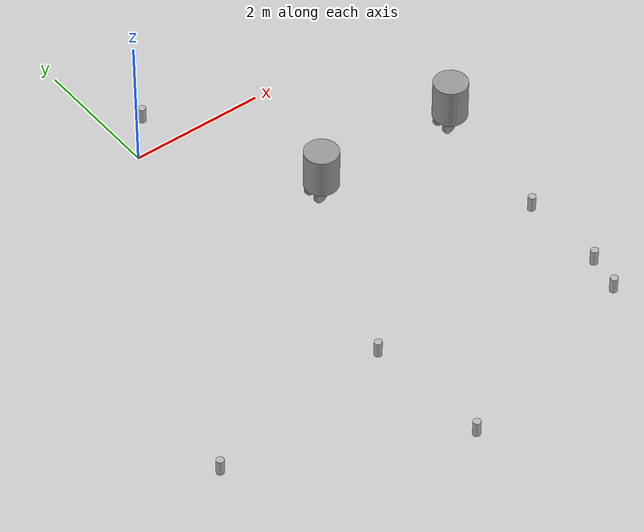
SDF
<sdf version="1.6">
 <world name="default">
  <model name="ground_plane">
   <static>1</static>
   <link name="link">
    <collision name="collision">
     <geometry><plane><normal>0 0 1</normal><size>100 100</size></plane></geometry>
     <surface><friction><ode><mu>100</mu><mu2>50</mu2></ode></friction></surface>
    </collision>
    <visual name="visual">
     <cast_shadows>0</cast_shadows>
     <geometry><plane><normal>0 0 1</normal><size>100 100</size></plane></geometry>
     <material>
      <script><uri>file://media/materials/scripts/gazebo.material</uri><name>Gazebo/Grey</name></script>
     </material>
    </visual>
   </link>
  </model>
  <model name="robot1">
   <link name="link_1">
    <pose>0.0125 -0 0.3 0 -0 0</pose>
    <inertial>
     <mass>1</mass>
     <inertia><ixx>0.145833</ixx><ixy>0</ixy><ixz>0</ixz><iyy>0.145833</iyy><iyz>0</iyz><izz>0.125</izz></inertia>
    </inertial>
    <visual name="visual">
     <geometry><cylinder><radius>0.25</radius><length>0.6</length></cylinder></geometry>
     <material>
      <lighting>1</lighting>
      <script><uri>file://media/materials/scripts/gazebo.material</uri><name>Gazebo/Grey</name></script>
      <shader type="pixel"><normal_map>__default__</normal_map></shader>
      <ambient>0.3 0.3 0.3 1</ambient>
      <diffuse>0.7 0.7 0.7 1</diffuse>
      <specular>0.01 0.01 0.01 1</specular>
      <emissive>0 0 0 1</emissive>
     </material>
    </visual>
    <collision name="collision">
     <geometry><cylinder><radius>0.25</radius><length>0.6</length></cylinder></geometry>
     <surface>
      <friction>
       <ode><mu>1</mu><mu2>1</mu2><fdir1>0 0 0</fdir1><slip1>0</slip1><slip2>0</slip2></ode>
       <torsional>
        <coefficient>1</coefficient>
        <patch_radius>0</patch_radius>
        <surface_radius>0</surface_radius>
        <use_patch_radius>1</use_patch_radius>
        <ode><slip>0</slip></ode>
       </torsional>
      </friction>
      <bounce><restitution_coefficient>0</restitution_coefficient><threshold>1e+06</threshold></bounce>
      <contact>
       <collide_without_contact>0</collide_without_contact>
       <collide_without_contact_bitmask>1</collide_without_contact_bitmask>
       <collide_bitmask>1</collide_bitmask>
       <ode>
        <soft_cfm>0</soft_cfm>
        <soft_erp>0.2</soft_erp>
        <kp>1e+13</kp>
        <kd>1</kd>
        <max_vel>0.01</max_vel>
        <min_depth>0</min_depth>
       </ode>
       <bullet>
        <split_impulse>1</split_impulse>
        <split_impulse_penetration_threshold>-0.01</split_impulse_penetration_threshold>
        <soft_cfm>0</soft_cfm>
        <soft_erp>0.2</soft_erp>
        <kp>1e+13</kp>
        <kd>1</kd>
       </bullet>
      </contact>
     </surface>
    </collision>
   </link>
   <link name="link_5">
    <pose>-0.0875 0.1 -0.1 1.5707 -0 0</pose>
    <inertial>
     <mass>1</mass>
     <inertia><ixx>0.145833</ixx><ixy>0</ixy><ixz>0</ixz><iyy>0.145833</iyy><iyz>0</iyz><izz>0.125</izz></inertia>
    </inertial>
    <visual name="visual">
     <geometry><cylinder><radius>0.1</radius><length>0.05</length></cylinder></geometry>
     <material>
      <lighting>1</lighting>
      <script><uri>file://media/materials/scripts/gazebo.material</uri><name>Gazebo/Grey</name></script>
      <shader type="pixel"><normal_map>__default__</normal_map></shader>
      <ambient>0.3 0.3 0.3 1</ambient>
      <diffuse>0.7 0.7 0.7 1</diffuse>
      <specular>0.01 0.01 0.01 1</specular>
      <emissive>0 0 0 1</emissive>
     </material>
    </visual>
    <collision name="collision">
     <geometry><cylinder><radius>0.1</radius><length>0.05</length></cylinder></geometry>
     <surface>
      <friction>
       <ode><mu>1</mu><mu2>1</mu2><fdir1>0 0 0</fdir1><slip1>0</slip1><slip2>0</slip2></ode>
       <torsional>
        <coefficient>1</coefficient>
        <patch_radius>0</patch_radius>
        <surface_radius>0</surface_radius>
        <use_patch_radius>1</use_patch_radius>
        <ode><slip>0</slip></ode>
       </torsional>
      </friction>
      <bounce><restitution_coefficient>0</restitution_coefficient><threshold>1e+06</threshold></bounce>
      <contact>
       <collide_without_contact>0</collide_without_contact>
       <collide_without_contact_bitmask>1</collide_without_contact_bitmask>
       <collide_bitmask>1</collide_bitmask>
       <ode>
        <soft_cfm>0</soft_cfm>
        <soft_erp>0.2</soft_erp>
        <kp>1e+13</kp>
        <kd>1</kd>
        <max_vel>0.01</max_vel>
        <min_depth>0</min_depth>
       </ode>
       <bullet>
        <split_impulse>1</split_impulse>
        <split_impulse_penetration_threshold>-0.01</split_impulse_penetration_threshold>
        <soft_cfm>0</soft_cfm>
        <soft_erp>0.2</soft_erp>
        <kp>1e+13</kp>
        <kd>1</kd>
       </bullet>
      </contact>
     </surface>
    </collision>
   </link>
   <link name="link_5_clone">
    <pose>-0.0875 -0.1 -0.1 1.5707 -0 0</pose>
    <inertial>
     <mass>1</mass>
     <inertia><ixx>0.145833</ixx><ixy>0</ixy><ixz>0</ixz><iyy>0.145833</iyy><iyz>0</iyz><izz>0.125</izz></inertia>
    </inertial>
    <visual name="visual">
     <geometry><cylinder><radius>0.1</radius><length>0.05</length></cylinder></geometry>
     <material>
      <lighting>1</lighting>
      <script><uri>file://media/materials/scripts/gazebo.material</uri><name>Gazebo/Grey</name></script>
      <shader type="pixel"><normal_map>__default__</normal_map></shader>
      <ambient>0.3 0.3 0.3 1</ambient>
      <diffuse>0.7 0.7 0.7 1</diffuse>
      <specular>0.01 0.01 0.01 1</specular>
      <emissive>0 0 0 1</emissive>
     </material>
    </visual>
    <collision name="collision">
     <geometry><cylinder><radius>0.1</radius><length>0.05</length></cylinder></geometry>
     <surface>
      <friction>
       <ode><mu>1</mu><mu2>1</mu2><fdir1>0 0 0</fdir1><slip1>0</slip1><slip2>0</slip2></ode>
       <torsional>
        <coefficient>1</coefficient>
        <patch_radius>0</patch_radius>
        <surface_radius>0</surface_radius>
        <use_patch_radius>1</use_patch_radius>
        <ode><slip>0</slip></ode>
       </torsional>
      </friction>
      <bounce><restitution_coefficient>0</restitution_coefficient><threshold>1e+06</threshold></bounce>
      <contact>
       <collide_without_contact>0</collide_without_contact>
       <collide_without_contact_bitmask>1</collide_without_contact_bitmask>
       <collide_bitmask>1</collide_bitmask>
       <ode>
        <soft_cfm>0</soft_cfm>
        <soft_erp>0.2</soft_erp>
        <kp>1e+13</kp>
        <kd>1</kd>
        <max_vel>0.01</max_vel>
        <min_depth>0</min_depth>
       </ode>
       <bullet>
        <split_impulse>1</split_impulse>
        <split_impulse_penetration_threshold>-0.01</split_impulse_penetration_threshold>
        <soft_cfm>0</soft_cfm>
        <soft_erp>0.2</soft_erp>
        <kp>1e+13</kp>
        <kd>1</kd>
       </bullet>
      </contact>
     </surface>
    </collision>
   </link>
   <link name="link_5_clone_clone">
    <pose>0.1625 -0 -0.1 1.5707 -0 0</pose>
    <inertial>
     <mass>1</mass>
     <inertia><ixx>0.145833</ixx><ixy>0</ixy><ixz>0</ixz><iyy>0.145833</iyy><iyz>0</iyz><izz>0.125</izz></inertia>
    </inertial>
    <visual name="visual">
     <geometry><cylinder><radius>0.1</radius><length>0.05</length></cylinder></geometry>
     <material>
      <lighting>1</lighting>
      <script><uri>file://media/materials/scripts/gazebo.material</uri><name>Gazebo/Grey</name></script>
      <shader type="pixel"><normal_map>__default__</normal_map></shader>
      <ambient>0.3 0.3 0.3 1</ambient>
      <diffuse>0.7 0.7 0.7 1</diffuse>
      <specular>0.01 0.01 0.01 1</specular>
      <emissive>0 0 0 1</emissive>
     </material>
    </visual>
    <collision name="collision">
     <geometry><cylinder><radius>0.1</radius><length>0.05</length></cylinder></geometry>
     <surface>
      <friction>
       <ode><mu>1</mu><mu2>1</mu2><fdir1>0 0 0</fdir1><slip1>0</slip1><slip2>0</slip2></ode>
       <torsional>
        <coefficient>1</coefficient>
        <patch_radius>0</patch_radius>
        <surface_radius>0</surface_radius>
        <use_patch_radius>1</use_patch_radius>
        <ode><slip>0</slip></ode>
       </torsional>
      </friction>
      <bounce><restitution_coefficient>0</restitution_coefficient><threshold>1e+06</threshold></bounce>
      <contact>
       <collide_without_contact>0</collide_without_contact>
       <collide_without_contact_bitmask>1</collide_without_contact_bitmask>
       <collide_bitmask>1</collide_bitmask>
       <ode>
        <soft_cfm>0</soft_cfm>
        <soft_erp>0.2</soft_erp>
        <kp>1e+13</kp>
        <kd>1</kd>
        <max_vel>0.01</max_vel>
        <min_depth>0</min_depth>
       </ode>
       <bullet>
        <split_impulse>1</split_impulse>
        <split_impulse_penetration_threshold>-0.01</split_impulse_penetration_threshold>
        <soft_cfm>0</soft_cfm>
        <soft_erp>0.2</soft_erp>
        <kp>1e+13</kp>
        <kd>1</kd>
       </bullet>
      </contact>
     </surface>
    </collision>
   </link>
   <joint name="link_1_JOINT_0" type="fixed">
    <parent>link_1</parent>
    <child>link_5</child>
    <pose>0 0 0 0 -0 0.01</pose>
    <physics>
     <ode><limit><cfm>0</cfm><erp>0.2</erp></limit><suspension><cfm>0</cfm><erp>0.2</erp></suspension></ode>
    </physics>
   </joint>
   <joint name="link_1_JOINT_1" type="fixed">
    <parent>link_1</parent>
    <child>link_5_clone</child>
    <physics>
     <ode><limit><cfm>0</cfm><erp>0.2</erp></limit><suspension><cfm>0</cfm><erp>0.2</erp></suspension></ode>
    </physics>
   </joint>
   <joint name="link_1_JOINT_2" type="revolute">
    <parent>link_1</parent>
    <child>link_5_clone_clone</child>
    <axis>
     <xyz>1 0 0</xyz>
     <use_parent_model_frame>0</use_parent_model_frame>
     <limit>
      <lower>-1.79769e+308</lower>
      <upper>1.79769e+308</upper>
      <effort>-1</effort>
      <velocity>-1</velocity>
     </limit>
     <dynamics>
      <spring_reference>0</spring_reference>
      <spring_stiffness>0</spring_stiffness>
      <damping>0</damping>
     </dynamics>
    </axis>
    <physics>
     <ode><limit><cfm>0</cfm><erp>0.2</erp></limit><suspension><cfm>0</cfm><erp>0.2</erp></suspension></ode>
    </physics>
   </joint>
   <static>0</static>
   <pose>3.79324 -2.06576 0.200001 3e-06 9e-06 0.027858</pose>
  </model>
  <model name="robot1_0">
   <link name="link_1">
    <pose>0.0125 -0 0.3 0 -0 0</pose>
    <inertial>
     <mass>1</mass>
     <inertia><ixx>0.145833</ixx><ixy>0</ixy><ixz>0</ixz><iyy>0.145833</iyy><iyz>0</iyz><izz>0.125</izz></inertia>
    </inertial>
    <visual name="visual">
     <geometry><cylinder><radius>0.25</radius><length>0.6</length></cylinder></geometry>
     <material>
      <lighting>1</lighting>
      <script><uri>file://media/materials/scripts/gazebo.material</uri><name>Gazebo/Grey</name></script>
      <shader type="pixel"><normal_map>__default__</normal_map></shader>
      <ambient>0.3 0.3 0.3 1</ambient>
      <diffuse>0.7 0.7 0.7 1</diffuse>
      <specular>0.01 0.01 0.01 1</specular>
      <emissive>0 0 0 1</emissive>
     </material>
    </visual>
    <collision name="collision">
     <geometry><cylinder><radius>0.25</radius><length>0.6</length></cylinder></geometry>
     <surface>
      <friction>
       <ode><mu>1</mu><mu2>1</mu2><fdir1>0 0 0</fdir1><slip1>0</slip1><slip2>0</slip2></ode>
       <torsional>
        <coefficient>1</coefficient>
        <patch_radius>0</patch_radius>
        <surface_radius>0</surface_radius>
        <use_patch_radius>1</use_patch_radius>
        <ode><slip>0</slip></ode>
       </torsional>
      </friction>
      <bounce><restitution_coefficient>0</restitution_coefficient><threshold>1e+06</threshold></bounce>
      <contact>
       <collide_without_contact>0</collide_without_contact>
       <collide_without_contact_bitmask>1</collide_without_contact_bitmask>
       <collide_bitmask>1</collide_bitmask>
       <ode>
        <soft_cfm>0</soft_cfm>
        <soft_erp>0.2</soft_erp>
        <kp>1e+13</kp>
        <kd>1</kd>
        <max_vel>0.01</max_vel>
        <min_depth>0</min_depth>
       </ode>
       <bullet>
        <split_impulse>1</split_impulse>
        <split_impulse_penetration_threshold>-0.01</split_impulse_penetration_threshold>
        <soft_cfm>0</soft_cfm>
        <soft_erp>0.2</soft_erp>
        <kp>1e+13</kp>
        <kd>1</kd>
       </bullet>
      </contact>
     </surface>
    </collision>
   </link>
   <link name="link_5">
    <pose>-0.0875 0.1 -0.1 1.5707 -0 0</pose>
    <inertial>
     <mass>1</mass>
     <inertia><ixx>0.145833</ixx><ixy>0</ixy><ixz>0</ixz><iyy>0.145833</iyy><iyz>0</iyz><izz>0.125</izz></inertia>
    </inertial>
    <visual name="visual">
     <geometry><cylinder><radius>0.1</radius><length>0.05</length></cylinder></geometry>
     <material>
      <lighting>1</lighting>
      <script><uri>file://media/materials/scripts/gazebo.material</uri><name>Gazebo/Grey</name></script>
      <shader type="pixel"><normal_map>__default__</normal_map></shader>
      <ambient>0.3 0.3 0.3 1</ambient>
      <diffuse>0.7 0.7 0.7 1</diffuse>
      <specular>0.01 0.01 0.01 1</specular>
      <emissive>0 0 0 1</emissive>
     </material>
    </visual>
    <collision name="collision">
     <geometry><cylinder><radius>0.1</radius><length>0.05</length></cylinder></geometry>
     <surface>
      <friction>
       <ode><mu>1</mu><mu2>1</mu2><fdir1>0 0 0</fdir1><slip1>0</slip1><slip2>0</slip2></ode>
       <torsional>
        <coefficient>1</coefficient>
        <patch_radius>0</patch_radius>
        <surface_radius>0</surface_radius>
        <use_patch_radius>1</use_patch_radius>
        <ode><slip>0</slip></ode>
       </torsional>
      </friction>
      <bounce><restitution_coefficient>0</restitution_coefficient><threshold>1e+06</threshold></bounce>
      <contact>
       <collide_without_contact>0</collide_without_contact>
       <collide_without_contact_bitmask>1</collide_without_contact_bitmask>
       <collide_bitmask>1</collide_bitmask>
       <ode>
        <soft_cfm>0</soft_cfm>
        <soft_erp>0.2</soft_erp>
        <kp>1e+13</kp>
        <kd>1</kd>
        <max_vel>0.01</max_vel>
        <min_depth>0</min_depth>
       </ode>
       <bullet>
        <split_impulse>1</split_impulse>
        <split_impulse_penetration_threshold>-0.01</split_impulse_penetration_threshold>
        <soft_cfm>0</soft_cfm>
        <soft_erp>0.2</soft_erp>
        <kp>1e+13</kp>
        <kd>1</kd>
       </bullet>
      </contact>
     </surface>
    </collision>
   </link>
   <link name="link_5_clone">
    <pose>-0.0875 -0.1 -0.1 1.5707 -0 0</pose>
    <inertial>
     <mass>1</mass>
     <inertia><ixx>0.145833</ixx><ixy>0</ixy><ixz>0</ixz><iyy>0.145833</iyy><iyz>0</iyz><izz>0.125</izz></inertia>
    </inertial>
    <visual name="visual">
     <geometry><cylinder><radius>0.1</radius><length>0.05</length></cylinder></geometry>
     <material>
      <lighting>1</lighting>
      <script><uri>file://media/materials/scripts/gazebo.material</uri><name>Gazebo/Grey</name></script>
      <shader type="pixel"><normal_map>__default__</normal_map></shader>
      <ambient>0.3 0.3 0.3 1</ambient>
      <diffuse>0.7 0.7 0.7 1</diffuse>
      <specular>0.01 0.01 0.01 1</specular>
      <emissive>0 0 0 1</emissive>
     </material>
    </visual>
    <collision name="collision">
     <geometry><cylinder><radius>0.1</radius><length>0.05</length></cylinder></geometry>
     <surface>
      <friction>
       <ode><mu>1</mu><mu2>1</mu2><fdir1>0 0 0</fdir1><slip1>0</slip1><slip2>0</slip2></ode>
       <torsional>
        <coefficient>1</coefficient>
        <patch_radius>0</patch_radius>
        <surface_radius>0</surface_radius>
        <use_patch_radius>1</use_patch_radius>
        <ode><slip>0</slip></ode>
       </torsional>
      </friction>
      <bounce><restitution_coefficient>0</restitution_coefficient><threshold>1e+06</threshold></bounce>
      <contact>
       <collide_without_contact>0</collide_without_contact>
       <collide_without_contact_bitmask>1</collide_without_contact_bitmask>
       <collide_bitmask>1</collide_bitmask>
       <ode>
        <soft_cfm>0</soft_cfm>
        <soft_erp>0.2</soft_erp>
        <kp>1e+13</kp>
        <kd>1</kd>
        <max_vel>0.01</max_vel>
        <min_depth>0</min_depth>
       </ode>
       <bullet>
        <split_impulse>1</split_impulse>
        <split_impulse_penetration_threshold>-0.01</split_impulse_penetration_threshold>
        <soft_cfm>0</soft_cfm>
        <soft_erp>0.2</soft_erp>
        <kp>1e+13</kp>
        <kd>1</kd>
       </bullet>
      </contact>
     </surface>
    </collision>
   </link>
   <link name="link_5_clone_clone">
    <pose>0.1625 -0 -0.1 1.5707 -0 0</pose>
    <inertial>
     <mass>1</mass>
     <inertia><ixx>0.145833</ixx><ixy>0</ixy><ixz>0</ixz><iyy>0.145833</iyy><iyz>0</iyz><izz>0.125</izz></inertia>
    </inertial>
    <visual name="visual">
     <geometry><cylinder><radius>0.1</radius><length>0.05</length></cylinder></geometry>
     <material>
      <lighting>1</lighting>
      <script><uri>file://media/materials/scripts/gazebo.material</uri><name>Gazebo/Grey</name></script>
      <shader type="pixel"><normal_map>__default__</normal_map></shader>
      <ambient>0.3 0.3 0.3 1</ambient>
      <diffuse>0.7 0.7 0.7 1</diffuse>
      <specular>0.01 0.01 0.01 1</specular>
      <emissive>0 0 0 1</emissive>
     </material>
    </visual>
    <collision name="collision">
     <geometry><cylinder><radius>0.1</radius><length>0.05</length></cylinder></geometry>
     <surface>
      <friction>
       <ode><mu>1</mu><mu2>1</mu2><fdir1>0 0 0</fdir1><slip1>0</slip1><slip2>0</slip2></ode>
       <torsional>
        <coefficient>1</coefficient>
        <patch_radius>0</patch_radius>
        <surface_radius>0</surface_radius>
        <use_patch_radius>1</use_patch_radius>
        <ode><slip>0</slip></ode>
       </torsional>
      </friction>
      <bounce><restitution_coefficient>0</restitution_coefficient><threshold>1e+06</threshold></bounce>
      <contact>
       <collide_without_contact>0</collide_without_contact>
       <collide_without_contact_bitmask>1</collide_without_contact_bitmask>
       <collide_bitmask>1</collide_bitmask>
       <ode>
        <soft_cfm>0</soft_cfm>
        <soft_erp>0.2</soft_erp>
        <kp>1e+13</kp>
        <kd>1</kd>
        <max_vel>0.01</max_vel>
        <min_depth>0</min_depth>
       </ode>
       <bullet>
        <split_impulse>1</split_impulse>
        <split_impulse_penetration_threshold>-0.01</split_impulse_penetration_threshold>
        <soft_cfm>0</soft_cfm>
        <soft_erp>0.2</soft_erp>
        <kp>1e+13</kp>
        <kd>1</kd>
       </bullet>
      </contact>
     </surface>
    </collision>
   </link>
   <joint name="link_1_JOINT_0" type="fixed">
    <parent>link_1</parent>
    <child>link_5</child>
    <pose>0 0 0 0 -0 0.01</pose>
    <physics>
     <ode><limit><cfm>0</cfm><erp>0.2</erp></limit><suspension><cfm>0</cfm><erp>0.2</erp></suspension></ode>
    </physics>
   </joint>
   <joint name="link_1_JOINT_1" type="fixed">
    <parent>link_1</parent>
    <child>link_5_clone</child>
    <physics>
     <ode><limit><cfm>0</cfm><erp>0.2</erp></limit><suspension><cfm>0</cfm><erp>0.2</erp></suspension></ode>
    </physics>
   </joint>
   <joint name="link_1_JOINT_2" type="revolute">
    <parent>link_1</parent>
    <child>link_5_clone_clone</child>
    <axis>
     <xyz>1 0 0</xyz>
     <use_parent_model_frame>0</use_parent_model_frame>
     <limit>
      <lower>-1.79769e+308</lower>
      <upper>1.79769e+308</upper>
      <effort>-1</effort>
      <velocity>-1</velocity>
     </limit>
     <dynamics>
      <spring_reference>0</spring_reference>
      <spring_stiffness>0</spring_stiffness>
      <damping>0</damping>
     </dynamics>
    </axis>
    <physics>
     <ode><limit><cfm>0</cfm><erp>0.2</erp></limit><suspension><cfm>0</cfm><erp>0.2</erp></suspension></ode>
    </physics>
   </joint>
   <static>0</static>
   <pose>1.55113 -2.08493 0.200001 5e-06 9e-06 0.043547</pose>
  </model>
  <model name="beer_0">
   <link name="link">
    <pose>0 0 0.115 0 -0 0</pose>
    <inertial>
     <mass>0.39</mass>
     <inertia><ixx>0.00058</ixx><ixy>0</ixy><ixz>0</ixz><iyy>0.00058</iyy><iyz>0</iyz><izz>0.00019</izz></inertia>
    </inertial>
    <collision name="collision">
     <geometry><cylinder><radius>0.055</radius><length>0.23</length></cylinder></geometry>
    </collision>
    <visual name="visual">
     <geometry><cylinder><radius>0.055</radius><length>0.23</length></cylinder></geometry>
     <material>
      <script>
       <uri>model://beer/materials/scripts</uri>
       <uri>model://beer/materials/textures</uri>
       <name>Beer/Diffuse</name>
      </script>
     </material>
    </visual>
   </link>
   <pose>2.99998 -6.44209 0.775001 1e-06 -2.7e-05 0.000552</pose>
  </model>
  <model name="beer_0_clone">
   <link name="link">
    <pose>0 0 0.115 0 -0 0</pose>
    <inertial>
     <mass>0.39</mass>
     <inertia><ixx>0.00058</ixx><ixy>0</ixy><ixz>0</ixz><iyy>0.00058</iyy><iyz>0</iyz><izz>0.00019</izz></inertia>
    </inertial>
    <collision name="collision">
     <geometry><cylinder><radius>0.055</radius><length>0.23</length></cylinder></geometry>
    </collision>
    <visual name="visual">
     <geometry><cylinder><radius>0.055</radius><length>0.23</length></cylinder></geometry>
     <material>
      <script>
       <uri>model://beer/materials/scripts</uri>
       <uri>model://beer/materials/textures</uri>
       <name>Beer/Diffuse</name>
      </script>
     </material>
    </visual>
   </link>
   <pose>3.12558 -5.89951 0.774993 4.8e-05 -0 0.000157</pose>
  </model>
  <model name="beer_0_clone_0">
   <link name="link">
    <pose>0 0 0.115 0 -0 0</pose>
    <inertial>
     <mass>0.39</mass>
     <inertia><ixx>0.00058</ixx><ixy>0</ixy><ixz>0</ixz><iyy>0.00058</iyy><iyz>0</iyz><izz>0.00019</izz></inertia>
    </inertial>
    <collision name="collision">
     <geometry><cylinder><radius>0.055</radius><length>0.23</length></cylinder></geometry>
    </collision>
    <visual name="visual">
     <geometry><cylinder><radius>0.055</radius><length>0.23</length></cylinder></geometry>
     <material>
      <script>
       <uri>model://beer/materials/scripts</uri>
       <uri>model://beer/materials/textures</uri>
       <name>Beer/Diffuse</name>
      </script>
     </material>
    </visual>
   </link>
   <pose>3.12045 -4.62853 0.775001 1.8e-05 2e-06 0.001724</pose>
  </model>
  <model name="beer_0_clone_1">
   <link name="link">
    <pose>0 0 0.115 0 -0 0</pose>
    <inertial>
     <mass>0.39</mass>
     <inertia><ixx>0.00058</ixx><ixy>0</ixy><ixz>0</ixz><iyy>0.00058</iyy><iyz>0</iyz><izz>0.00019</izz></inertia>
    </inertial>
    <collision name="collision">
     <geometry><cylinder><radius>0.055</radius><length>0.23</length></cylinder></geometry>
    </collision>
    <visual name="visual">
     <geometry><cylinder><radius>0.055</radius><length>0.23</length></cylinder></geometry>
     <material>
      <script>
       <uri>model://beer/materials/scripts</uri>
       <uri>model://beer/materials/textures</uri>
       <name>Beer/Diffuse</name>
      </script>
     </material>
    </visual>
   </link>
   <pose>0.023346 -0.105801 0.775001 -1e-06 2.7e-05 0.000398</pose>
  </model>
  <model name="beer_0_clone_3">
   <link name="link">
    <pose>0 0 0.115 0 -0 0</pose>
    <inertial>
     <mass>0.39</mass>
     <inertia><ixx>0.00058</ixx><ixy>0</ixy><ixz>0</ixz><iyy>0.00058</iyy><iyz>0</iyz><izz>0.00019</izz></inertia>
    </inertial>
    <collision name="collision">
     <geometry><cylinder><radius>0.055</radius><length>0.23</length></cylinder></geometry>
    </collision>
    <visual name="visual">
     <geometry><cylinder><radius>0.055</radius><length>0.23</length></cylinder></geometry>
     <material>
      <script>
       <uri>model://beer/materials/scripts</uri>
       <uri>model://beer/materials/textures</uri>
       <name>Beer/Diffuse</name>
      </script>
     </material>
    </visual>
   </link>
   <pose>-0.135263 -5.49396 0.774992 3.2e-05 5e-06 0.000484</pose>
  </model>
  <model name="beer_0_clone_4">
   <link name="link">
    <pose>0 0 0.115 0 -0 0</pose>
    <inertial>
     <mass>0.39</mass>
     <inertia><ixx>0.00058</ixx><ixy>0</ixy><ixz>0</ixz><iyy>0.00058</iyy><iyz>0</iyz><izz>0.00019</izz></inertia>
    </inertial>
    <collision name="collision">
     <geometry><cylinder><radius>0.055</radius><length>0.23</length></cylinder></geometry>
    </collision>
    <visual name="visual">
     <geometry><cylinder><radius>0.055</radius><length>0.23</length></cylinder></geometry>
     <material>
      <script>
       <uri>model://beer/materials/scripts</uri>
       <uri>model://beer/materials/textures</uri>
       <name>Beer/Diffuse</name>
      </script>
     </material>
    </visual>
   </link>
   <pose>-0.001107 -7.32973 0.774991 2.2e-05 -6e-06 0.000651</pose>
  </model>
  <model name="beer_0_clone_5">
   <link name="link">
    <pose>0 0 0.115 0 -0 0</pose>
    <inertial>
     <mass>0.39</mass>
     <inertia><ixx>0.00058</ixx><ixy>0</ixy><ixz>0</ixz><iyy>0.00058</iyy><iyz>0</iyz><izz>0.00019</izz></inertia>
    </inertial>
    <collision name="collision">
     <geometry><cylinder><radius>0.055</radius><length>0.23</length></cylinder></geometry>
    </collision>
    <visual name="visual">
     <geometry><cylinder><radius>0.055</radius><length>0.23</length></cylinder></geometry>
     <material>
      <script>
       <uri>model://beer/materials/scripts</uri>
       <uri>model://beer/materials/textures</uri>
       <name>Beer/Diffuse</name>
      </script>
     </material>
    </visual>
   </link>
   <pose>-2.9392 -5.89992 0.774994 1.3e-05 7e-05 0.000709</pose>
  </model>
 </world>
</sdf>
